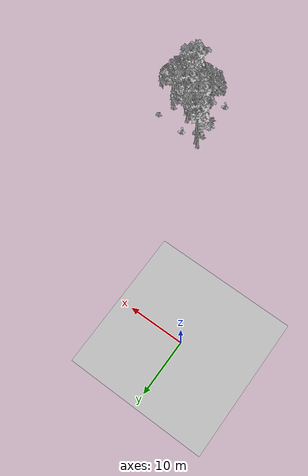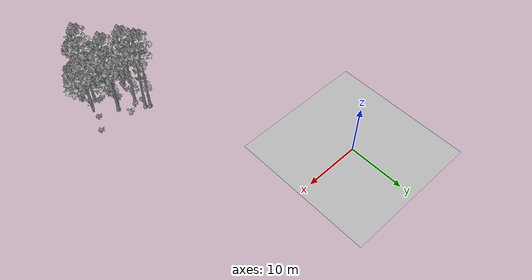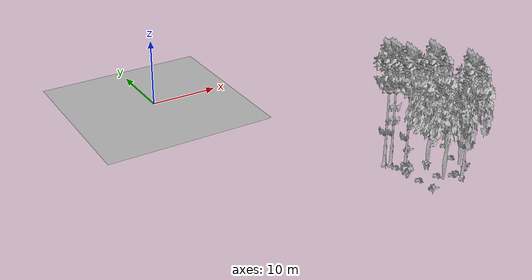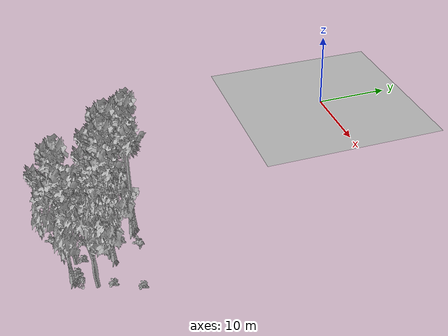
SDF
<sdf version="1.7">
 <world name="default">
  <model name="ground_plane">
   <static>1</static>
   <link name="link">
    <collision name="collision">
     <pose>-50 0 0 0 -0 0</pose>
     <geometry><plane><normal>0 0 1</normal><size>80 80</size></plane></geometry>
     <surface><contact><ode><min_depth>0.01</min_depth><max_vel>0</max_vel></ode></contact></surface>
    </collision>
    <visual name="grass">
     <cast_shadows>0</cast_shadows>
     <geometry>
      <mesh>
       <scale>0.46714285714285714 0.46714285714285714 0.1</scale>
       <uri>file://grass_plane/meshes/grass_plane.dae</uri>
      </mesh>
     </geometry>
    </visual>
   </link>
  </model>
  <model name="Tree 1">
   <static>1</static>
   <pose>18.60243217217141 -30.711495372445697 0 1.57079 -0 0</pose>
   <link name="link">
    <collision name="collision">
     <geometry><mesh><scale>3.5 5 3.5</scale><uri>model://tree_9/meshes/tree_9.obj</uri></mesh></geometry>
    </collision>
    <visual name="visual">
     <geometry><mesh><scale>3.5 5 3.5</scale><uri>model://tree_9/meshes/tree_9.obj</uri></mesh></geometry>
    </visual>
   </link>
  </model>
  <model name="Tree 269">
   <static>1</static>
   <pose>19.28651069654378 -31.17007107566911 0 1.57079 -0 0</pose>
   <link name="link">
    <collision name="collision">
     <geometry><mesh><scale>3.5 5 3.5</scale><uri>model://tree_9/meshes/tree_9.obj</uri></mesh></geometry>
    </collision>
    <visual name="visual">
     <geometry><mesh><scale>3.5 5 3.5</scale><uri>model://tree_9/meshes/tree_9.obj</uri></mesh></geometry>
    </visual>
   </link>
  </model>
  <model name="Tree 338">
   <static>1</static>
   <pose>26.570478170208744 -36.13508535310974 0 1.57079 -0 0</pose>
   <link name="link">
    <collision name="collision">
     <geometry><mesh><scale>3.5 5 3.5</scale><uri>model://tree_2/meshes/tree_2.obj</uri></mesh></geometry>
    </collision>
    <visual name="visual">
     <geometry><mesh><scale>3.5 5 3.5</scale><uri>model://tree_2/meshes/tree_2.obj</uri></mesh></geometry>
    </visual>
   </link>
  </model>
  <model name="Tree 346">
   <static>1</static>
   <pose>23.15406301696821 -33.85947791017728 0 1.57079 -0 0</pose>
   <link name="link">
    <collision name="collision">
     <geometry><mesh><scale>3.5 5 3.5</scale><uri>model://tree_9/meshes/tree_9.obj</uri></mesh></geometry>
    </collision>
    <visual name="visual">
     <geometry><mesh><scale>3.5 5 3.5</scale><uri>model://tree_9/meshes/tree_9.obj</uri></mesh></geometry>
    </visual>
   </link>
  </model>
  <model name="Tree 422">
   <static>1</static>
   <pose>24.991620550247795 -38.44825358337232 0 1.57079 -0 0</pose>
   <link name="link">
    <collision name="collision">
     <geometry><mesh><scale>3.5 5 3.5</scale><uri>model://tree_9/meshes/tree_9.obj</uri></mesh></geometry>
    </collision>
    <visual name="visual">
     <geometry><mesh><scale>3.5 5 3.5</scale><uri>model://tree_9/meshes/tree_9.obj</uri></mesh></geometry>
    </visual>
   </link>
  </model>
  <model name="Tree 538">
   <static>1</static>
   <pose>22.73177176271085 -34.24381039592753 0 1.57079 -0 0</pose>
   <link name="link">
    <collision name="collision">
     <geometry><mesh><scale>3.5 5 3.5</scale><uri>model://tree_2/meshes/tree_2.obj</uri></mesh></geometry>
    </collision>
    <visual name="visual">
     <geometry><mesh><scale>3.5 5 3.5</scale><uri>model://tree_2/meshes/tree_2.obj</uri></mesh></geometry>
    </visual>
   </link>
  </model>
  <model name="Tree 542">
   <static>1</static>
   <pose>20.039475026428278 -33.15928868058429 0 1.57079 -0 0</pose>
   <link name="link">
    <collision name="collision">
     <geometry><mesh><scale>3.5 5 3.5</scale><uri>model://tree_9/meshes/tree_9.obj</uri></mesh></geometry>
    </collision>
    <visual name="visual">
     <geometry><mesh><scale>3.5 5 3.5</scale><uri>model://tree_9/meshes/tree_9.obj</uri></mesh></geometry>
    </visual>
   </link>
  </model>
  <model name="Tree 603">
   <static>1</static>
   <pose>22.336794104323594 -37.76378288917822 0 1.57079 -0 0</pose>
   <link name="link">
    <collision name="collision">
     <geometry><mesh><scale>3.5 5 3.5</scale><uri>model://tree_2/meshes/tree_2.obj</uri></mesh></geometry>
    </collision>
    <visual name="visual">
     <geometry><mesh><scale>3.5 5 3.5</scale><uri>model://tree_2/meshes/tree_2.obj</uri></mesh></geometry>
    </visual>
   </link>
  </model>
  <model name="Bush 41">
   <static>1</static>
   <pose>22.03566601781919 -36.975507110460775 0 1.57079 -0 0</pose>
   <link name="link">
    <collision name="collision">
     <geometry><mesh><scale>2 2 2</scale><uri>model://bush_2/meshes/bush_2.obj</uri></mesh></geometry>
     <surface><contact><collide_without_contact>false</collide_without_contact></contact></surface>
    </collision>
    <visual name="visual">
     <geometry><mesh><scale>2 2 2</scale><uri>model://bush_2/meshes/bush_2.obj</uri></mesh></geometry>
    </visual>
   </link>
  </model>
  <model name="Bush 80">
   <static>1</static>
   <pose>18.79307138370344 -32.73377799919494 0 1.57079 -0 0</pose>
   <link name="link">
    <collision name="collision">
     <geometry><mesh><scale>2 2 2</scale><uri>model://bush_2/meshes/bush_2.obj</uri></mesh></geometry>
     <surface><contact><collide_without_contact>false</collide_without_contact></contact></surface>
    </collision>
    <visual name="visual">
     <geometry><mesh><scale>2 2 2</scale><uri>model://bush_2/meshes/bush_2.obj</uri></mesh></geometry>
    </visual>
   </link>
  </model>
  <model name="Bush 87">
   <static>1</static>
   <pose>27.997047027673702 -31.74793699450806 0 1.57079 -0 0</pose>
   <link name="link">
    <collision name="collision">
     <geometry><mesh><scale>2 2 2</scale><uri>model://bush_2/meshes/bush_2.obj</uri></mesh></geometry>
     <surface><contact><collide_without_contact>false</collide_without_contact></contact></surface>
    </collision>
    <visual name="visual">
     <geometry><mesh><scale>2 2 2</scale><uri>model://bush_2/meshes/bush_2.obj</uri></mesh></geometry>
    </visual>
   </link>
  </model>
  <model name="Bush 143">
   <static>1</static>
   <pose>20.35767045508696 -32.63754390796536 0 1.57079 -0 0</pose>
   <link name="link">
    <collision name="collision">
     <geometry><mesh><scale>2 2 2</scale><uri>model://bush_2/meshes/bush_2.obj</uri></mesh></geometry>
     <surface><contact><collide_without_contact>false</collide_without_contact></contact></surface>
    </collision>
    <visual name="visual">
     <geometry><mesh><scale>2 2 2</scale><uri>model://bush_2/meshes/bush_2.obj</uri></mesh></geometry>
    </visual>
   </link>
  </model>
  <model name="Bush 155">
   <static>1</static>
   <pose>24.497588979150493 -37.72462968224907 0 1.57079 -0 0</pose>
   <link name="link">
    <collision name="collision">
     <geometry><mesh><scale>2 2 2</scale><uri>model://bush_2/meshes/bush_2.obj</uri></mesh></geometry>
     <surface><contact><collide_without_contact>false</collide_without_contact></contact></surface>
    </collision>
    <visual name="visual">
     <geometry><mesh><scale>2 2 2</scale><uri>model://bush_2/meshes/bush_2.obj</uri></mesh></geometry>
    </visual>
   </link>
  </model>
  <model name="Bush 220">
   <static>1</static>
   <pose>18.661816047270243 -35.20750810788119 0 1.57079 -0 0</pose>
   <link name="link">
    <collision name="collision">
     <geometry><mesh><scale>2 2 2</scale><uri>model://bush_4/meshes/bush_4.obj</uri></mesh></geometry>
     <surface><contact><collide_without_contact>false</collide_without_contact></contact></surface>
    </collision>
    <visual name="visual">
     <geometry><mesh><scale>2 2 2</scale><uri>model://bush_4/meshes/bush_4.obj</uri></mesh></geometry>
    </visual>
   </link>
  </model>
  <model name="Bush 228">
   <static>1</static>
   <pose>26.628881980424765 -34.5446248757156 0 1.57079 -0 0</pose>
   <link name="link">
    <collision name="collision">
     <geometry><mesh><scale>2 2 2</scale><uri>model://bush_2/meshes/bush_2.obj</uri></mesh></geometry>
     <surface><contact><collide_without_contact>false</collide_without_contact></contact></surface>
    </collision>
    <visual name="visual">
     <geometry><mesh><scale>2 2 2</scale><uri>model://bush_2/meshes/bush_2.obj</uri></mesh></geometry>
    </visual>
   </link>
  </model>
  <model name="Bush 232">
   <static>1</static>
   <pose>26.143836958521746 -37.837328490936024 0 1.57079 -0 0</pose>
   <link name="link">
    <collision name="collision">
     <geometry><mesh><scale>2 2 2</scale><uri>model://bush_4/meshes/bush_4.obj</uri></mesh></geometry>
     <surface><contact><collide_without_contact>false</collide_without_contact></contact></surface>
    </collision>
    <visual name="visual">
     <geometry><mesh><scale>2 2 2</scale><uri>model://bush_4/meshes/bush_4.obj</uri></mesh></geometry>
    </visual>
   </link>
  </model>
  <model name="Bush 262">
   <static>1</static>
   <pose>19.385104895977804 -36.65448449242263 0 1.57079 -0 0</pose>
   <link name="link">
    <collision name="collision">
     <geometry><mesh><scale>2 2 2</scale><uri>model://bush_2/meshes/bush_2.obj</uri></mesh></geometry>
     <surface><contact><collide_without_contact>false</collide_without_contact></contact></surface>
    </collision>
    <visual name="visual">
     <geometry><mesh><scale>2 2 2</scale><uri>model://bush_2/meshes/bush_2.obj</uri></mesh></geometry>
    </visual>
   </link>
  </model>
  <model name="Bush 275">
   <static>1</static>
   <pose>23.809886628646098 -37.87859155114695 0 1.57079 -0 0</pose>
   <link name="link">
    <collision name="collision">
     <geometry><mesh><scale>2 2 2</scale><uri>model://bush_2/meshes/bush_2.obj</uri></mesh></geometry>
     <surface><contact><collide_without_contact>false</collide_without_contact></contact></surface>
    </collision>
    <visual name="visual">
     <geometry><mesh><scale>2 2 2</scale><uri>model://bush_2/meshes/bush_2.obj</uri></mesh></geometry>
    </visual>
   </link>
  </model>
  <model name="Bush 348">
   <static>1</static>
   <pose>18.949978461169287 -39.72178226496424 0 1.57079 -0 0</pose>
   <link name="link">
    <collision name="collision">
     <geometry><mesh><scale>2 2 2</scale><uri>model://bush_0/meshes/bush_0.obj</uri></mesh></geometry>
     <surface><contact><collide_without_contact>false</collide_without_contact></contact></surface>
    </collision>
    <visual name="visual">
     <geometry><mesh><scale>2 2 2</scale><uri>model://bush_0/meshes/bush_0.obj</uri></mesh></geometry>
    </visual>
   </link>
  </model>
  <model name="Bush 411">
   <static>1</static>
   <pose>22.387088555831063 -30.91540391718203 0 1.57079 -0 0</pose>
   <link name="link">
    <collision name="collision">
     <geometry><mesh><scale>2 2 2</scale><uri>model://bush_0/meshes/bush_0.obj</uri></mesh></geometry>
     <surface><contact><collide_without_contact>false</collide_without_contact></contact></surface>
    </collision>
    <visual name="visual">
     <geometry><mesh><scale>2 2 2</scale><uri>model://bush_0/meshes/bush_0.obj</uri></mesh></geometry>
    </visual>
   </link>
  </model>
  <model name="Bush 577">
   <static>1</static>
   <pose>21.889519493313514 -34.915803166253625 0 1.57079 -0 0</pose>
   <link name="link">
    <collision name="collision">
     <geometry><mesh><scale>2 2 2</scale><uri>model://bush_5/meshes/bush_5.obj</uri></mesh></geometry>
     <surface><contact><collide_without_contact>false</collide_without_contact></contact></surface>
    </collision>
    <visual name="visual">
     <geometry><mesh><scale>2 2 2</scale><uri>model://bush_5/meshes/bush_5.obj</uri></mesh></geometry>
    </visual>
   </link>
  </model>
  <model name="Bush 627">
   <static>1</static>
   <pose>19.12703594404214 -34.72671094777073 0 1.57079 -0 0</pose>
   <link name="link">
    <collision name="collision">
     <geometry><mesh><scale>2 2 2</scale><uri>model://bush_1/meshes/bush_1.obj</uri></mesh></geometry>
     <surface><contact><collide_without_contact>false</collide_without_contact></contact></surface>
    </collision>
    <visual name="visual">
     <geometry><mesh><scale>2 2 2</scale><uri>model://bush_1/meshes/bush_1.obj</uri></mesh></geometry>
    </visual>
   </link>
  </model>
 </world>
</sdf>
